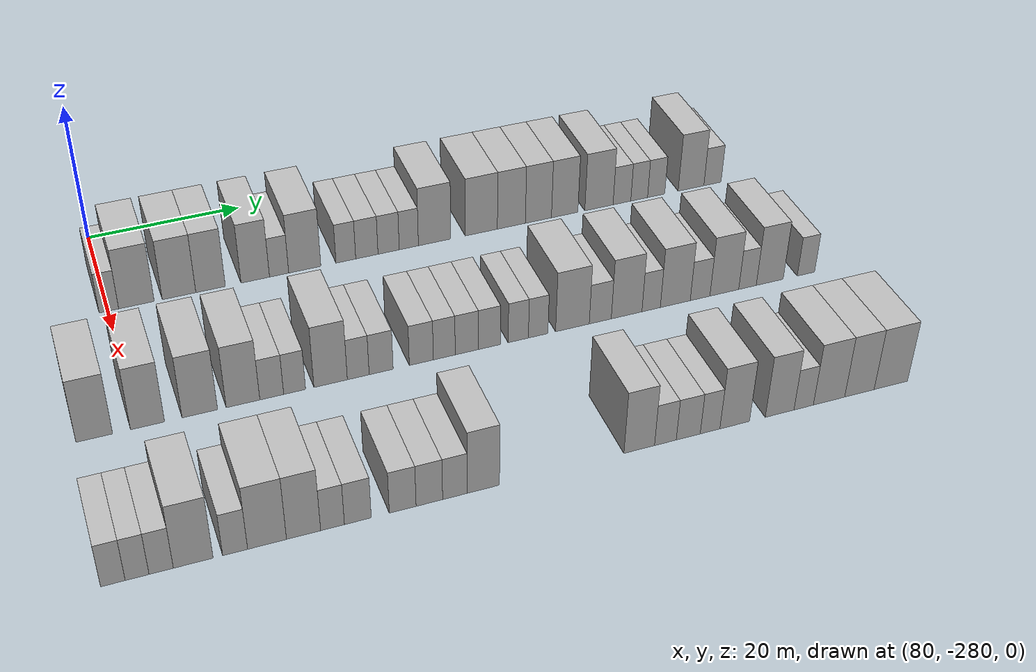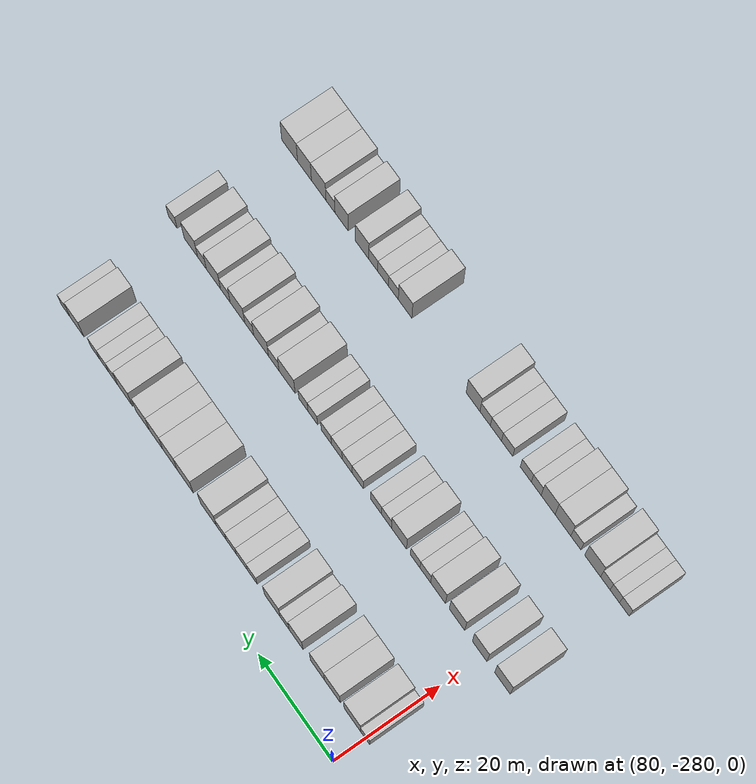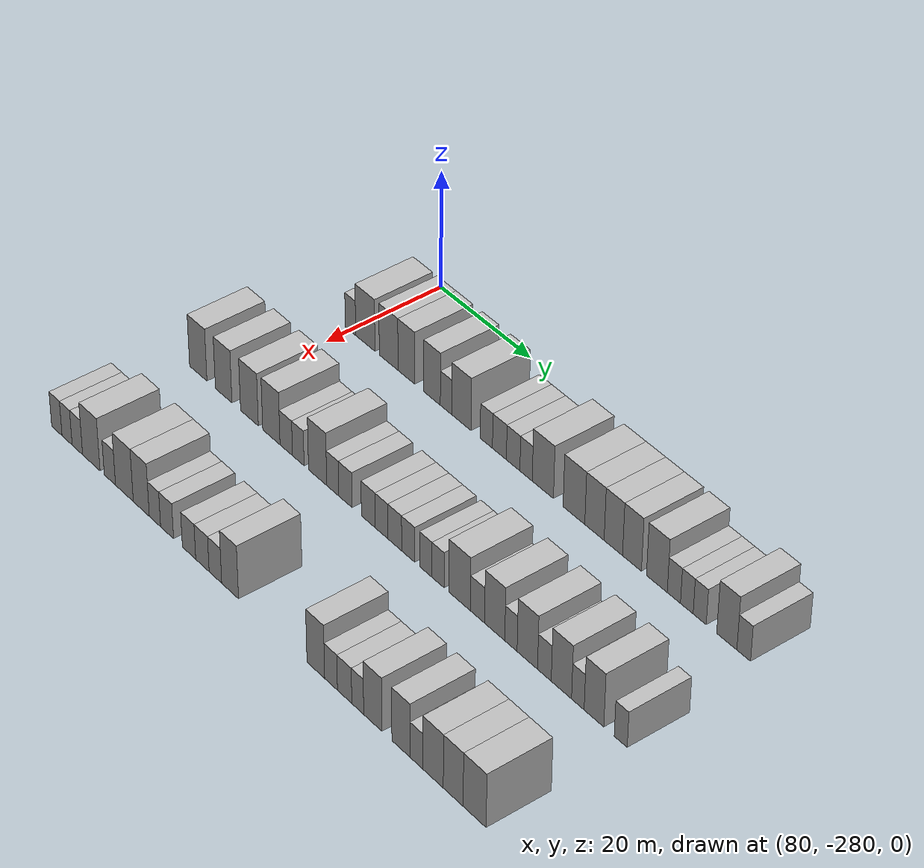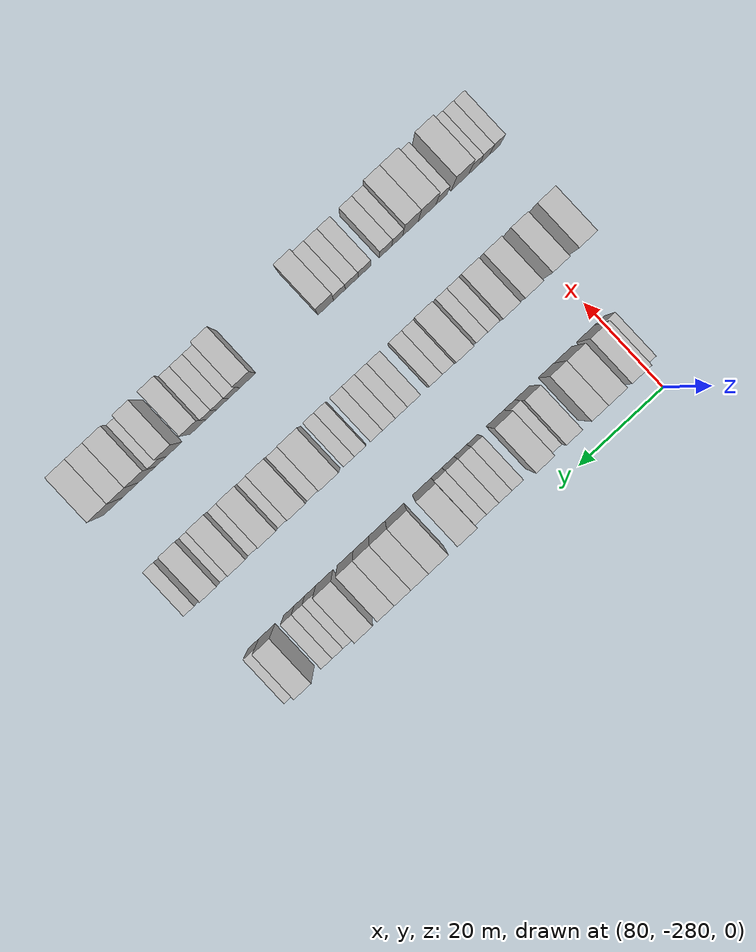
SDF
<sdf version="1.6">
 <world name="default">
  <model name="building_583">
   <static>1</static>
   <pose>91.0000 -279.8989 0 0.000000 0.000000 0.000000</pose>
   <link name="link">
    <pose>0 0 3.00 0 0 0</pose>
    <collision name="collision"><geometry><box><size>10.0000 2.4034 6.0000</size></box></geometry></collision>
    <visual name="visual">
     <cast_shadows>0</cast_shadows>
     <geometry><box><size>10.0000 2.4034 6.0000</size></box></geometry>
     <material>
      <script>
       <uri>model://HANNAS_wall/materials/scripts</uri>
       <uri>model://HANNAS_wall/materials/textures</uri>
       <name>vrc/HANNAS_wall</name>
      </script>
     </material>
    </visual>
   </link>
  </model>
  <model name="building_584">
   <static>1</static>
   <pose>91.0000 -276.4935 0 0.000000 0.000000 0.000000</pose>
   <link name="link">
    <pose>0 0 4.50 0 0 0</pose>
    <collision name="collision"><geometry><box><size>10.0000 4.4073 9.0000</size></box></geometry></collision>
    <visual name="visual">
     <cast_shadows>0</cast_shadows>
     <geometry><box><size>10.0000 4.4073 9.0000</size></box></geometry>
     <material>
      <script>
       <uri>model://HANNAS_wall/materials/scripts</uri>
       <uri>model://HANNAS_wall/materials/textures</uri>
       <name>vrc/HANNAS_wall</name>
      </script>
     </material>
    </visual>
   </link>
  </model>
  <model name="building_585">
   <static>1</static>
   <pose>91.0000 -271.1800 0 0.000000 0.000000 0.000000</pose>
   <link name="link">
    <pose>0 0 4.50 0 0 0</pose>
    <collision name="collision"><geometry><box><size>10.0000 4.2196 9.0000</size></box></geometry></collision>
    <visual name="visual">
     <cast_shadows>0</cast_shadows>
     <geometry><box><size>10.0000 4.2196 9.0000</size></box></geometry>
     <material>
      <script>
       <uri>model://HANNAS_wall/materials/scripts</uri>
       <uri>model://HANNAS_wall/materials/textures</uri>
       <name>vrc/HANNAS_wall</name>
      </script>
     </material>
    </visual>
   </link>
  </model>
  <model name="building_586">
   <static>1</static>
   <pose>91.0000 -267.1969 0 0.000000 0.000000 0.000000</pose>
   <link name="link">
    <pose>0 0 4.50 0 0 0</pose>
    <collision name="collision"><geometry><box><size>10.0000 3.7467 9.0000</size></box></geometry></collision>
    <visual name="visual">
     <cast_shadows>0</cast_shadows>
     <geometry><box><size>10.0000 3.7467 9.0000</size></box></geometry>
     <material>
      <script>
       <uri>model://HANNAS_wall/materials/scripts</uri>
       <uri>model://HANNAS_wall/materials/textures</uri>
       <name>vrc/HANNAS_wall</name>
      </script>
     </material>
    </visual>
   </link>
  </model>
  <model name="building_587">
   <static>1</static>
   <pose>91.0000 -261.4858 0 0.000000 0.000000 0.000000</pose>
   <link name="link">
    <pose>0 0 4.50 0 0 0</pose>
    <collision name="collision"><geometry><box><size>10.0000 3.6754 9.0000</size></box></geometry></collision>
    <visual name="visual">
     <cast_shadows>0</cast_shadows>
     <geometry><box><size>10.0000 3.6754 9.0000</size></box></geometry>
     <material>
      <script>
       <uri>model://HANNAS_wall/materials/scripts</uri>
       <uri>model://HANNAS_wall/materials/textures</uri>
       <name>vrc/HANNAS_wall</name>
      </script>
     </material>
    </visual>
   </link>
  </model>
  <model name="building_588">
   <static>1</static>
   <pose>91.0000 -258.4003 0 0.000000 0.000000 0.000000</pose>
   <link name="link">
    <pose>0 0 3.00 0 0 0</pose>
    <collision name="collision"><geometry><box><size>10.0000 2.4956 6.0000</size></box></geometry></collision>
    <visual name="visual">
     <cast_shadows>0</cast_shadows>
     <geometry><box><size>10.0000 2.4956 6.0000</size></box></geometry>
     <material>
      <script>
       <uri>model://HANNAS_wall/materials/scripts</uri>
       <uri>model://HANNAS_wall/materials/textures</uri>
       <name>vrc/HANNAS_wall</name>
      </script>
     </material>
    </visual>
   </link>
  </model>
  <model name="building_589">
   <static>1</static>
   <pose>91.0000 -255.0483 0 0.000000 0.000000 0.000000</pose>
   <link name="link">
    <pose>0 0 4.50 0 0 0</pose>
    <collision name="collision"><geometry><box><size>10.0000 4.2083 9.0000</size></box></geometry></collision>
    <visual name="visual">
     <cast_shadows>0</cast_shadows>
     <geometry><box><size>10.0000 4.2083 9.0000</size></box></geometry>
     <material>
      <script>
       <uri>model://HANNAS_wall/materials/scripts</uri>
       <uri>model://HANNAS_wall/materials/textures</uri>
       <name>vrc/HANNAS_wall</name>
      </script>
     </material>
    </visual>
   </link>
  </model>
  <model name="building_590">
   <static>1</static>
   <pose>91.0000 -249.6351 0 0.000000 0.000000 0.000000</pose>
   <link name="link">
    <pose>0 0 3.00 0 0 0</pose>
    <collision name="collision"><geometry><box><size>10.0000 2.6181 6.0000</size></box></geometry></collision>
    <visual name="visual">
     <cast_shadows>0</cast_shadows>
     <geometry><box><size>10.0000 2.6181 6.0000</size></box></geometry>
     <material>
      <script>
       <uri>model://HANNAS_wall/materials/scripts</uri>
       <uri>model://HANNAS_wall/materials/textures</uri>
       <name>vrc/HANNAS_wall</name>
      </script>
     </material>
    </visual>
   </link>
  </model>
  <model name="building_591">
   <static>1</static>
   <pose>91.0000 -246.8352 0 0.000000 0.000000 0.000000</pose>
   <link name="link">
    <pose>0 0 3.00 0 0 0</pose>
    <collision name="collision"><geometry><box><size>10.0000 2.9816 6.0000</size></box></geometry></collision>
    <visual name="visual">
     <cast_shadows>0</cast_shadows>
     <geometry><box><size>10.0000 2.9816 6.0000</size></box></geometry>
     <material>
      <script>
       <uri>model://HANNAS_wall/materials/scripts</uri>
       <uri>model://HANNAS_wall/materials/textures</uri>
       <name>vrc/HANNAS_wall</name>
      </script>
     </material>
    </visual>
   </link>
  </model>
  <model name="building_592">
   <static>1</static>
   <pose>91.0000 -243.9129 0 0.000000 0.000000 0.000000</pose>
   <link name="link">
    <pose>0 0 3.00 0 0 0</pose>
    <collision name="collision"><geometry><box><size>10.0000 2.8630 6.0000</size></box></geometry></collision>
    <visual name="visual">
     <cast_shadows>0</cast_shadows>
     <geometry><box><size>10.0000 2.8630 6.0000</size></box></geometry>
     <material>
      <script>
       <uri>model://HANNAS_wall/materials/scripts</uri>
       <uri>model://HANNAS_wall/materials/textures</uri>
       <name>vrc/HANNAS_wall</name>
      </script>
     </material>
    </visual>
   </link>
  </model>
  <model name="building_593">
   <static>1</static>
   <pose>91.0000 -241.1825 0 0.000000 0.000000 0.000000</pose>
   <link name="link">
    <pose>0 0 3.00 0 0 0</pose>
    <collision name="collision"><geometry><box><size>10.0000 2.5979 6.0000</size></box></geometry></collision>
    <visual name="visual">
     <cast_shadows>0</cast_shadows>
     <geometry><box><size>10.0000 2.5979 6.0000</size></box></geometry>
     <material>
      <script>
       <uri>model://HANNAS_wall/materials/scripts</uri>
       <uri>model://HANNAS_wall/materials/textures</uri>
       <name>vrc/HANNAS_wall</name>
      </script>
     </material>
    </visual>
   </link>
  </model>
  <model name="building_594">
   <static>1</static>
   <pose>91.0000 -237.6687 0 0.000000 0.000000 0.000000</pose>
   <link name="link">
    <pose>0 0 4.50 0 0 0</pose>
    <collision name="collision"><geometry><box><size>10.0000 4.4295 9.0000</size></box></geometry></collision>
    <visual name="visual">
     <cast_shadows>0</cast_shadows>
     <geometry><box><size>10.0000 4.4295 9.0000</size></box></geometry>
     <material>
      <script>
       <uri>model://HANNAS_wall/materials/scripts</uri>
       <uri>model://HANNAS_wall/materials/textures</uri>
       <name>vrc/HANNAS_wall</name>
      </script>
     </material>
    </visual>
   </link>
  </model>
  <model name="building_595">
   <static>1</static>
   <pose>91.0000 -231.2241 0 0.000000 0.000000 0.000000</pose>
   <link name="link">
    <pose>0 0 4.50 0 0 0</pose>
    <collision name="collision"><geometry><box><size>10.0000 4.4598 9.0000</size></box></geometry></collision>
    <visual name="visual">
     <cast_shadows>0</cast_shadows>
     <geometry><box><size>10.0000 4.4598 9.0000</size></box></geometry>
     <material>
      <script>
       <uri>model://HANNAS_wall/materials/scripts</uri>
       <uri>model://HANNAS_wall/materials/textures</uri>
       <name>vrc/HANNAS_wall</name>
      </script>
     </material>
    </visual>
   </link>
  </model>
  <model name="building_596">
   <static>1</static>
   <pose>91.0000 -227.0301 0 0.000000 0.000000 0.000000</pose>
   <link name="link">
    <pose>0 0 4.50 0 0 0</pose>
    <collision name="collision"><geometry><box><size>10.0000 3.9282 9.0000</size></box></geometry></collision>
    <visual name="visual">
     <cast_shadows>0</cast_shadows>
     <geometry><box><size>10.0000 3.9282 9.0000</size></box></geometry>
     <material>
      <script>
       <uri>model://HANNAS_wall/materials/scripts</uri>
       <uri>model://HANNAS_wall/materials/textures</uri>
       <name>vrc/HANNAS_wall</name>
      </script>
     </material>
    </visual>
   </link>
  </model>
  <model name="building_597">
   <static>1</static>
   <pose>91.0000 -223.2110 0 0.000000 0.000000 0.000000</pose>
   <link name="link">
    <pose>0 0 4.50 0 0 0</pose>
    <collision name="collision"><geometry><box><size>10.0000 3.7100 9.0000</size></box></geometry></collision>
    <visual name="visual">
     <cast_shadows>0</cast_shadows>
     <geometry><box><size>10.0000 3.7100 9.0000</size></box></geometry>
     <material>
      <script>
       <uri>model://HANNAS_wall/materials/scripts</uri>
       <uri>model://HANNAS_wall/materials/textures</uri>
       <name>vrc/HANNAS_wall</name>
      </script>
     </material>
    </visual>
   </link>
  </model>
  <model name="building_598">
   <static>1</static>
   <pose>91.0000 -219.4651 0 0.000000 0.000000 0.000000</pose>
   <link name="link">
    <pose>0 0 4.50 0 0 0</pose>
    <collision name="collision"><geometry><box><size>10.0000 3.7818 9.0000</size></box></geometry></collision>
    <visual name="visual">
     <cast_shadows>0</cast_shadows>
     <geometry><box><size>10.0000 3.7818 9.0000</size></box></geometry>
     <material>
      <script>
       <uri>model://HANNAS_wall/materials/scripts</uri>
       <uri>model://HANNAS_wall/materials/textures</uri>
       <name>vrc/HANNAS_wall</name>
      </script>
     </material>
    </visual>
   </link>
  </model>
  <model name="building_599">
   <static>1</static>
   <pose>91.0000 -214.5236 0 0.000000 0.000000 0.000000</pose>
   <link name="link">
    <pose>0 0 4.50 0 0 0</pose>
    <collision name="collision"><geometry><box><size>10.0000 4.1012 9.0000</size></box></geometry></collision>
    <visual name="visual">
     <cast_shadows>0</cast_shadows>
     <geometry><box><size>10.0000 4.1012 9.0000</size></box></geometry>
     <material>
      <script>
       <uri>model://HANNAS_wall/materials/scripts</uri>
       <uri>model://HANNAS_wall/materials/textures</uri>
       <name>vrc/HANNAS_wall</name>
      </script>
     </material>
    </visual>
   </link>
  </model>
  <model name="building_600">
   <static>1</static>
   <pose>91.0000 -211.1805 0 0.000000 0.000000 0.000000</pose>
   <link name="link">
    <pose>0 0 3.00 0 0 0</pose>
    <collision name="collision"><geometry><box><size>10.0000 2.5851 6.0000</size></box></geometry></collision>
    <visual name="visual">
     <cast_shadows>0</cast_shadows>
     <geometry><box><size>10.0000 2.5851 6.0000</size></box></geometry>
     <material>
      <script>
       <uri>model://HANNAS_wall/materials/scripts</uri>
       <uri>model://HANNAS_wall/materials/textures</uri>
       <name>vrc/HANNAS_wall</name>
      </script>
     </material>
    </visual>
   </link>
  </model>
  <model name="building_601">
   <static>1</static>
   <pose>91.0000 -208.6540 0 0.000000 0.000000 0.000000</pose>
   <link name="link">
    <pose>0 0 3.00 0 0 0</pose>
    <collision name="collision"><geometry><box><size>10.0000 2.4679 6.0000</size></box></geometry></collision>
    <visual name="visual">
     <cast_shadows>0</cast_shadows>
     <geometry><box><size>10.0000 2.4679 6.0000</size></box></geometry>
     <material>
      <script>
       <uri>model://HANNAS_wall/materials/scripts</uri>
       <uri>model://HANNAS_wall/materials/textures</uri>
       <name>vrc/HANNAS_wall</name>
      </script>
     </material>
    </visual>
   </link>
  </model>
  <model name="building_602">
   <static>1</static>
   <pose>91.0000 -206.1531 0 0.000000 0.000000 0.000000</pose>
   <link name="link">
    <pose>0 0 3.00 0 0 0</pose>
    <collision name="collision"><geometry><box><size>10.0000 2.5339 6.0000</size></box></geometry></collision>
    <visual name="visual">
     <cast_shadows>0</cast_shadows>
     <geometry><box><size>10.0000 2.5339 6.0000</size></box></geometry>
     <material>
      <script>
       <uri>model://HANNAS_wall/materials/scripts</uri>
       <uri>model://HANNAS_wall/materials/textures</uri>
       <name>vrc/HANNAS_wall</name>
      </script>
     </material>
    </visual>
   </link>
  </model>
  <model name="building_603">
   <static>1</static>
   <pose>91.0000 -200.9616 0 0.000000 0.000000 0.000000</pose>
   <link name="link">
    <pose>0 0 4.50 0 0 0</pose>
    <collision name="collision"><geometry><box><size>10.0000 3.8490 9.0000</size></box></geometry></collision>
    <visual name="visual">
     <cast_shadows>0</cast_shadows>
     <geometry><box><size>10.0000 3.8490 9.0000</size></box></geometry>
     <material>
      <script>
       <uri>model://HANNAS_wall/materials/scripts</uri>
       <uri>model://HANNAS_wall/materials/textures</uri>
       <name>vrc/HANNAS_wall</name>
      </script>
     </material>
    </visual>
   </link>
  </model>
  <model name="building_604">
   <static>1</static>
   <pose>91.0000 -197.7402 0 0.000000 0.000000 0.000000</pose>
   <link name="link">
    <pose>0 0 3.00 0 0 0</pose>
    <collision name="collision"><geometry><box><size>10.0000 2.5940 6.0000</size></box></geometry></collision>
    <visual name="visual">
     <cast_shadows>0</cast_shadows>
     <geometry><box><size>10.0000 2.5940 6.0000</size></box></geometry>
     <material>
      <script>
       <uri>model://HANNAS_wall/materials/scripts</uri>
       <uri>model://HANNAS_wall/materials/textures</uri>
       <name>vrc/HANNAS_wall</name>
      </script>
     </material>
    </visual>
   </link>
  </model>
  <model name="building_765">
   <static>1</static>
   <pose>113.0000 -285.1212 0 0.000000 0.000000 0.000000</pose>
   <link name="link">
    <pose>0 0 4.50 0 0 0</pose>
    <collision name="collision"><geometry><box><size>10.0000 4.1030 9.0000</size></box></geometry></collision>
    <visual name="visual">
     <cast_shadows>0</cast_shadows>
     <geometry><box><size>10.0000 4.1030 9.0000</size></box></geometry>
     <material>
      <script>
       <uri>model://HANNAS_wall/materials/scripts</uri>
       <uri>model://HANNAS_wall/materials/textures</uri>
       <name>vrc/HANNAS_wall</name>
      </script>
     </material>
    </visual>
   </link>
  </model>
  <model name="building_766">
   <static>1</static>
   <pose>113.0000 -279.1335 0 0.000000 0.000000 0.000000</pose>
   <link name="link">
    <pose>0 0 4.50 0 0 0</pose>
    <collision name="collision"><geometry><box><size>10.0000 3.8724 9.0000</size></box></geometry></collision>
    <visual name="visual">
     <cast_shadows>0</cast_shadows>
     <geometry><box><size>10.0000 3.8724 9.0000</size></box></geometry>
     <material>
      <script>
       <uri>model://HANNAS_wall/materials/scripts</uri>
       <uri>model://HANNAS_wall/materials/textures</uri>
       <name>vrc/HANNAS_wall</name>
      </script>
     </material>
    </visual>
   </link>
  </model>
  <model name="building_767">
   <static>1</static>
   <pose>113.0000 -273.1442 0 0.000000 0.000000 0.000000</pose>
   <link name="link">
    <pose>0 0 4.50 0 0 0</pose>
    <collision name="collision"><geometry><box><size>10.0000 4.1061 9.0000</size></box></geometry></collision>
    <visual name="visual">
     <cast_shadows>0</cast_shadows>
     <geometry><box><size>10.0000 4.1061 9.0000</size></box></geometry>
     <material>
      <script>
       <uri>model://HANNAS_wall/materials/scripts</uri>
       <uri>model://HANNAS_wall/materials/textures</uri>
       <name>vrc/HANNAS_wall</name>
      </script>
     </material>
    </visual>
   </link>
  </model>
  <model name="building_768">
   <static>1</static>
   <pose>113.0000 -268.1210 0 0.000000 0.000000 0.000000</pose>
   <link name="link">
    <pose>0 0 4.50 0 0 0</pose>
    <collision name="collision"><geometry><box><size>10.0000 3.9403 9.0000</size></box></geometry></collision>
    <visual name="visual">
     <cast_shadows>0</cast_shadows>
     <geometry><box><size>10.0000 3.9403 9.0000</size></box></geometry>
     <material>
      <script>
       <uri>model://HANNAS_wall/materials/scripts</uri>
       <uri>model://HANNAS_wall/materials/textures</uri>
       <name>vrc/HANNAS_wall</name>
      </script>
     </material>
    </visual>
   </link>
  </model>
  <model name="building_769">
   <static>1</static>
   <pose>113.0000 -264.7407 0 0.000000 0.000000 0.000000</pose>
   <link name="link">
    <pose>0 0 3.00 0 0 0</pose>
    <collision name="collision"><geometry><box><size>10.0000 2.8204 6.0000</size></box></geometry></collision>
    <visual name="visual">
     <cast_shadows>0</cast_shadows>
     <geometry><box><size>10.0000 2.8204 6.0000</size></box></geometry>
     <material>
      <script>
       <uri>model://HANNAS_wall/materials/scripts</uri>
       <uri>model://HANNAS_wall/materials/textures</uri>
       <name>vrc/HANNAS_wall</name>
      </script>
     </material>
    </visual>
   </link>
  </model>
  <model name="building_770">
   <static>1</static>
   <pose>113.0000 -262.0262 0 0.000000 0.000000 0.000000</pose>
   <link name="link">
    <pose>0 0 3.00 0 0 0</pose>
    <collision name="collision"><geometry><box><size>10.0000 2.6085 6.0000</size></box></geometry></collision>
    <visual name="visual">
     <cast_shadows>0</cast_shadows>
     <geometry><box><size>10.0000 2.6085 6.0000</size></box></geometry>
     <material>
      <script>
       <uri>model://HANNAS_wall/materials/scripts</uri>
       <uri>model://HANNAS_wall/materials/textures</uri>
       <name>vrc/HANNAS_wall</name>
      </script>
     </material>
    </visual>
   </link>
  </model>
  <model name="building_771">
   <static>1</static>
   <pose>113.0000 -257.7062 0 0.000000 0.000000 0.000000</pose>
   <link name="link">
    <pose>0 0 4.50 0 0 0</pose>
    <collision name="collision"><geometry><box><size>10.0000 4.0316 9.0000</size></box></geometry></collision>
    <visual name="visual">
     <cast_shadows>0</cast_shadows>
     <geometry><box><size>10.0000 4.0316 9.0000</size></box></geometry>
     <material>
      <script>
       <uri>model://HANNAS_wall/materials/scripts</uri>
       <uri>model://HANNAS_wall/materials/textures</uri>
       <name>vrc/HANNAS_wall</name>
      </script>
     </material>
    </visual>
   </link>
  </model>
  <model name="building_772">
   <static>1</static>
   <pose>113.0000 -254.3630 0 0.000000 0.000000 0.000000</pose>
   <link name="link">
    <pose>0 0 3.00 0 0 0</pose>
    <collision name="collision"><geometry><box><size>10.0000 2.6547 6.0000</size></box></geometry></collision>
    <visual name="visual">
     <cast_shadows>0</cast_shadows>
     <geometry><box><size>10.0000 2.6547 6.0000</size></box></geometry>
     <material>
      <script>
       <uri>model://HANNAS_wall/materials/scripts</uri>
       <uri>model://HANNAS_wall/materials/textures</uri>
       <name>vrc/HANNAS_wall</name>
      </script>
     </material>
    </visual>
   </link>
  </model>
  <model name="building_773">
   <static>1</static>
   <pose>113.0000 -251.5645 0 0.000000 0.000000 0.000000</pose>
   <link name="link">
    <pose>0 0 3.00 0 0 0</pose>
    <collision name="collision"><geometry><box><size>10.0000 2.9424 6.0000</size></box></geometry></collision>
    <visual name="visual">
     <cast_shadows>0</cast_shadows>
     <geometry><box><size>10.0000 2.9424 6.0000</size></box></geometry>
     <material>
      <script>
       <uri>model://HANNAS_wall/materials/scripts</uri>
       <uri>model://HANNAS_wall/materials/textures</uri>
       <name>vrc/HANNAS_wall</name>
      </script>
     </material>
    </visual>
   </link>
  </model>
  <model name="building_774">
   <static>1</static>
   <pose>113.0000 -246.6026 0 0.000000 0.000000 0.000000</pose>
   <link name="link">
    <pose>0 0 3.00 0 0 0</pose>
    <collision name="collision"><geometry><box><size>10.0000 2.9816 6.0000</size></box></geometry></collision>
    <visual name="visual">
     <cast_shadows>0</cast_shadows>
     <geometry><box><size>10.0000 2.9816 6.0000</size></box></geometry>
     <material>
      <script>
       <uri>model://HANNAS_wall/materials/scripts</uri>
       <uri>model://HANNAS_wall/materials/textures</uri>
       <name>vrc/HANNAS_wall</name>
      </script>
     </material>
    </visual>
   </link>
  </model>
  <model name="building_775">
   <static>1</static>
   <pose>113.0000 -243.7395 0 0.000000 0.000000 0.000000</pose>
   <link name="link">
    <pose>0 0 3.00 0 0 0</pose>
    <collision name="collision"><geometry><box><size>10.0000 2.7446 6.0000</size></box></geometry></collision>
    <visual name="visual">
     <cast_shadows>0</cast_shadows>
     <geometry><box><size>10.0000 2.7446 6.0000</size></box></geometry>
     <material>
      <script>
       <uri>model://HANNAS_wall/materials/scripts</uri>
       <uri>model://HANNAS_wall/materials/textures</uri>
       <name>vrc/HANNAS_wall</name>
      </script>
     </material>
    </visual>
   </link>
  </model>
  <model name="building_776">
   <static>1</static>
   <pose>113.0000 -240.9069 0 0.000000 0.000000 0.000000</pose>
   <link name="link">
    <pose>0 0 3.00 0 0 0</pose>
    <collision name="collision"><geometry><box><size>10.0000 2.9207 6.0000</size></box></geometry></collision>
    <visual name="visual">
     <cast_shadows>0</cast_shadows>
     <geometry><box><size>10.0000 2.9207 6.0000</size></box></geometry>
     <material>
      <script>
       <uri>model://HANNAS_wall/materials/scripts</uri>
       <uri>model://HANNAS_wall/materials/textures</uri>
       <name>vrc/HANNAS_wall</name>
      </script>
     </material>
    </visual>
   </link>
  </model>
  <model name="building_777">
   <static>1</static>
   <pose>113.0000 -238.0486 0 0.000000 0.000000 0.000000</pose>
   <link name="link">
    <pose>0 0 3.00 0 0 0</pose>
    <collision name="collision"><geometry><box><size>10.0000 2.7958 6.0000</size></box></geometry></collision>
    <visual name="visual">
     <cast_shadows>0</cast_shadows>
     <geometry><box><size>10.0000 2.7958 6.0000</size></box></geometry>
     <material>
      <script>
       <uri>model://HANNAS_wall/materials/scripts</uri>
       <uri>model://HANNAS_wall/materials/textures</uri>
       <name>vrc/HANNAS_wall</name>
      </script>
     </material>
    </visual>
   </link>
  </model>
  <model name="building_778">
   <static>1</static>
   <pose>113.0000 -234.3490 0 0.000000 0.000000 0.000000</pose>
   <link name="link">
    <pose>0 0 3.00 0 0 0</pose>
    <collision name="collision"><geometry><box><size>10.0000 2.6035 6.0000</size></box></geometry></collision>
    <visual name="visual">
     <cast_shadows>0</cast_shadows>
     <geometry><box><size>10.0000 2.6035 6.0000</size></box></geometry>
     <material>
      <script>
       <uri>model://HANNAS_wall/materials/scripts</uri>
       <uri>model://HANNAS_wall/materials/textures</uri>
       <name>vrc/HANNAS_wall</name>
      </script>
     </material>
    </visual>
   </link>
  </model>
  <model name="building_779">
   <static>1</static>
   <pose>113.0000 -231.7825 0 0.000000 0.000000 0.000000</pose>
   <link name="link">
    <pose>0 0 3.00 0 0 0</pose>
    <collision name="collision"><geometry><box><size>10.0000 2.5296 6.0000</size></box></geometry></collision>
    <visual name="visual">
     <cast_shadows>0</cast_shadows>
     <geometry><box><size>10.0000 2.5296 6.0000</size></box></geometry>
     <material>
      <script>
       <uri>model://HANNAS_wall/materials/scripts</uri>
       <uri>model://HANNAS_wall/materials/textures</uri>
       <name>vrc/HANNAS_wall</name>
      </script>
     </material>
    </visual>
   </link>
  </model>
  <model name="building_780">
   <static>1</static>
   <pose>113.0000 -227.3114 0 0.000000 0.000000 0.000000</pose>
   <link name="link">
    <pose>0 0 4.50 0 0 0</pose>
    <collision name="collision"><geometry><box><size>10.0000 4.4125 9.0000</size></box></geometry></collision>
    <visual name="visual">
     <cast_shadows>0</cast_shadows>
     <geometry><box><size>10.0000 4.4125 9.0000</size></box></geometry>
     <material>
      <script>
       <uri>model://HANNAS_wall/materials/scripts</uri>
       <uri>model://HANNAS_wall/materials/textures</uri>
       <name>vrc/HANNAS_wall</name>
      </script>
     </material>
    </visual>
   </link>
  </model>
  <model name="building_781">
   <static>1</static>
   <pose>113.0000 -223.6478 0 0.000000 0.000000 0.000000</pose>
   <link name="link">
    <pose>0 0 3.00 0 0 0</pose>
    <collision name="collision"><geometry><box><size>10.0000 2.9148 6.0000</size></box></geometry></collision>
    <visual name="visual">
     <cast_shadows>0</cast_shadows>
     <geometry><box><size>10.0000 2.9148 6.0000</size></box></geometry>
     <material>
      <script>
       <uri>model://HANNAS_wall/materials/scripts</uri>
       <uri>model://HANNAS_wall/materials/textures</uri>
       <name>vrc/HANNAS_wall</name>
      </script>
     </material>
    </visual>
   </link>
  </model>
  <model name="building_782">
   <static>1</static>
   <pose>113.0000 -220.1425 0 0.000000 0.000000 0.000000</pose>
   <link name="link">
    <pose>0 0 4.50 0 0 0</pose>
    <collision name="collision"><geometry><box><size>10.0000 4.0959 9.0000</size></box></geometry></collision>
    <visual name="visual">
     <cast_shadows>0</cast_shadows>
     <geometry><box><size>10.0000 4.0959 9.0000</size></box></geometry>
     <material>
      <script>
       <uri>model://HANNAS_wall/materials/scripts</uri>
       <uri>model://HANNAS_wall/materials/textures</uri>
       <name>vrc/HANNAS_wall</name>
      </script>
     </material>
    </visual>
   </link>
  </model>
  <model name="building_783">
   <static>1</static>
   <pose>113.0000 -216.8578 0 0.000000 0.000000 0.000000</pose>
   <link name="link">
    <pose>0 0 3.00 0 0 0</pose>
    <collision name="collision"><geometry><box><size>10.0000 2.4735 6.0000</size></box></geometry></collision>
    <visual name="visual">
     <cast_shadows>0</cast_shadows>
     <geometry><box><size>10.0000 2.4735 6.0000</size></box></geometry>
     <material>
      <script>
       <uri>model://HANNAS_wall/materials/scripts</uri>
       <uri>model://HANNAS_wall/materials/textures</uri>
       <name>vrc/HANNAS_wall</name>
      </script>
     </material>
    </visual>
   </link>
  </model>
  <model name="building_784">
   <static>1</static>
   <pose>113.0000 -213.5853 0 0.000000 0.000000 0.000000</pose>
   <link name="link">
    <pose>0 0 4.50 0 0 0</pose>
    <collision name="collision"><geometry><box><size>10.0000 4.0714 9.0000</size></box></geometry></collision>
    <visual name="visual">
     <cast_shadows>0</cast_shadows>
     <geometry><box><size>10.0000 4.0714 9.0000</size></box></geometry>
     <material>
      <script>
       <uri>model://HANNAS_wall/materials/scripts</uri>
       <uri>model://HANNAS_wall/materials/textures</uri>
       <name>vrc/HANNAS_wall</name>
      </script>
     </material>
    </visual>
   </link>
  </model>
  <model name="building_785">
   <static>1</static>
   <pose>113.0000 -210.1982 0 0.000000 0.000000 0.000000</pose>
   <link name="link">
    <pose>0 0 3.00 0 0 0</pose>
    <collision name="collision"><geometry><box><size>10.0000 2.7028 6.0000</size></box></geometry></collision>
    <visual name="visual">
     <cast_shadows>0</cast_shadows>
     <geometry><box><size>10.0000 2.7028 6.0000</size></box></geometry>
     <material>
      <script>
       <uri>model://HANNAS_wall/materials/scripts</uri>
       <uri>model://HANNAS_wall/materials/textures</uri>
       <name>vrc/HANNAS_wall</name>
      </script>
     </material>
    </visual>
   </link>
  </model>
  <model name="building_786">
   <static>1</static>
   <pose>113.0000 -206.8570 0 0.000000 0.000000 0.000000</pose>
   <link name="link">
    <pose>0 0 4.50 0 0 0</pose>
    <collision name="collision"><geometry><box><size>10.0000 3.9797 9.0000</size></box></geometry></collision>
    <visual name="visual">
     <cast_shadows>0</cast_shadows>
     <geometry><box><size>10.0000 3.9797 9.0000</size></box></geometry>
     <material>
      <script>
       <uri>model://HANNAS_wall/materials/scripts</uri>
       <uri>model://HANNAS_wall/materials/textures</uri>
       <name>vrc/HANNAS_wall</name>
      </script>
     </material>
    </visual>
   </link>
  </model>
  <model name="building_787">
   <static>1</static>
   <pose>113.0000 -203.6434 0 0.000000 0.000000 0.000000</pose>
   <link name="link">
    <pose>0 0 3.00 0 0 0</pose>
    <collision name="collision"><geometry><box><size>10.0000 2.4476 6.0000</size></box></geometry></collision>
    <visual name="visual">
     <cast_shadows>0</cast_shadows>
     <geometry><box><size>10.0000 2.4476 6.0000</size></box></geometry>
     <material>
      <script>
       <uri>model://HANNAS_wall/materials/scripts</uri>
       <uri>model://HANNAS_wall/materials/textures</uri>
       <name>vrc/HANNAS_wall</name>
      </script>
     </material>
    </visual>
   </link>
  </model>
  <model name="building_788">
   <static>1</static>
   <pose>113.0000 -200.5249 0 0.000000 0.000000 0.000000</pose>
   <link name="link">
    <pose>0 0 4.50 0 0 0</pose>
    <collision name="collision"><geometry><box><size>10.0000 3.7893 9.0000</size></box></geometry></collision>
    <visual name="visual">
     <cast_shadows>0</cast_shadows>
     <geometry><box><size>10.0000 3.7893 9.0000</size></box></geometry>
     <material>
      <script>
       <uri>model://HANNAS_wall/materials/scripts</uri>
       <uri>model://HANNAS_wall/materials/textures</uri>
       <name>vrc/HANNAS_wall</name>
      </script>
     </material>
    </visual>
   </link>
  </model>
  <model name="building_789">
   <static>1</static>
   <pose>113.0000 -195.3949 0 0.000000 0.000000 0.000000</pose>
   <link name="link">
    <pose>0 0 3.00 0 0 0</pose>
    <collision name="collision"><geometry><box><size>10.0000 2.4707 6.0000</size></box></geometry></collision>
    <visual name="visual">
     <cast_shadows>0</cast_shadows>
     <geometry><box><size>10.0000 2.4707 6.0000</size></box></geometry>
     <material>
      <script>
       <uri>model://HANNAS_wall/materials/scripts</uri>
       <uri>model://HANNAS_wall/materials/textures</uri>
       <name>vrc/HANNAS_wall</name>
      </script>
     </material>
    </visual>
   </link>
  </model>
  <model name="building_956">
   <static>1</static>
   <pose>135.0000 -286.6862 0 0.000000 0.000000 0.000000</pose>
   <link name="link">
    <pose>0 0 3.00 0 0 0</pose>
    <collision name="collision"><geometry><box><size>10.0000 2.5023 6.0000</size></box></geometry></collision>
    <visual name="visual">
     <cast_shadows>0</cast_shadows>
     <geometry><box><size>10.0000 2.5023 6.0000</size></box></geometry>
     <material>
      <script>
       <uri>model://HANNAS_wall/materials/scripts</uri>
       <uri>model://HANNAS_wall/materials/textures</uri>
       <name>vrc/HANNAS_wall</name>
      </script>
     </material>
    </visual>
   </link>
  </model>
  <model name="building_957">
   <static>1</static>
   <pose>135.0000 -284.2163 0 0.000000 0.000000 0.000000</pose>
   <link name="link">
    <pose>0 0 3.00 0 0 0</pose>
    <collision name="collision"><geometry><box><size>10.0000 2.4375 6.0000</size></box></geometry></collision>
    <visual name="visual">
     <cast_shadows>0</cast_shadows>
     <geometry><box><size>10.0000 2.4375 6.0000</size></box></geometry>
     <material>
      <script>
       <uri>model://HANNAS_wall/materials/scripts</uri>
       <uri>model://HANNAS_wall/materials/textures</uri>
       <name>vrc/HANNAS_wall</name>
      </script>
     </material>
    </visual>
   </link>
  </model>
  <model name="building_958">
   <static>1</static>
   <pose>135.0000 -281.7423 0 0.000000 0.000000 0.000000</pose>
   <link name="link">
    <pose>0 0 3.00 0 0 0</pose>
    <collision name="collision"><geometry><box><size>10.0000 2.5106 6.0000</size></box></geometry></collision>
    <visual name="visual">
     <cast_shadows>0</cast_shadows>
     <geometry><box><size>10.0000 2.5106 6.0000</size></box></geometry>
     <material>
      <script>
       <uri>model://HANNAS_wall/materials/scripts</uri>
       <uri>model://HANNAS_wall/materials/textures</uri>
       <name>vrc/HANNAS_wall</name>
      </script>
     </material>
    </visual>
   </link>
  </model>
  <model name="building_959">
   <static>1</static>
   <pose>135.0000 -278.4130 0 0.000000 0.000000 0.000000</pose>
   <link name="link">
    <pose>0 0 4.50 0 0 0</pose>
    <collision name="collision"><geometry><box><size>10.0000 4.1481 9.0000</size></box></geometry></collision>
    <visual name="visual">
     <cast_shadows>0</cast_shadows>
     <geometry><box><size>10.0000 4.1481 9.0000</size></box></geometry>
     <material>
      <script>
       <uri>model://HANNAS_wall/materials/scripts</uri>
       <uri>model://HANNAS_wall/materials/textures</uri>
       <name>vrc/HANNAS_wall</name>
      </script>
     </material>
    </visual>
   </link>
  </model>
  <model name="building_960">
   <static>1</static>
   <pose>135.0000 -274.0202 0 0.000000 0.000000 0.000000</pose>
   <link name="link">
    <pose>0 0 3.00 0 0 0</pose>
    <collision name="collision"><geometry><box><size>10.0000 2.6375 6.0000</size></box></geometry></collision>
    <visual name="visual">
     <cast_shadows>0</cast_shadows>
     <geometry><box><size>10.0000 2.6375 6.0000</size></box></geometry>
     <material>
      <script>
       <uri>model://HANNAS_wall/materials/scripts</uri>
       <uri>model://HANNAS_wall/materials/textures</uri>
       <name>vrc/HANNAS_wall</name>
      </script>
     </material>
    </visual>
   </link>
  </model>
  <model name="building_961">
   <static>1</static>
   <pose>135.0000 -270.6253 0 0.000000 0.000000 0.000000</pose>
   <link name="link">
    <pose>0 0 4.50 0 0 0</pose>
    <collision name="collision"><geometry><box><size>10.0000 4.1524 9.0000</size></box></geometry></collision>
    <visual name="visual">
     <cast_shadows>0</cast_shadows>
     <geometry><box><size>10.0000 4.1524 9.0000</size></box></geometry>
     <material>
      <script>
       <uri>model://HANNAS_wall/materials/scripts</uri>
       <uri>model://HANNAS_wall/materials/textures</uri>
       <name>vrc/HANNAS_wall</name>
      </script>
     </material>
    </visual>
   </link>
  </model>
  <model name="building_962">
   <static>1</static>
   <pose>135.0000 -266.7012 0 0.000000 0.000000 0.000000</pose>
   <link name="link">
    <pose>0 0 4.50 0 0 0</pose>
    <collision name="collision"><geometry><box><size>10.0000 3.6958 9.0000</size></box></geometry></collision>
    <visual name="visual">
     <cast_shadows>0</cast_shadows>
     <geometry><box><size>10.0000 3.6958 9.0000</size></box></geometry>
     <material>
      <script>
       <uri>model://HANNAS_wall/materials/scripts</uri>
       <uri>model://HANNAS_wall/materials/textures</uri>
       <name>vrc/HANNAS_wall</name>
      </script>
     </material>
    </visual>
   </link>
  </model>
  <model name="building_963">
   <static>1</static>
   <pose>135.0000 -263.5567 0 0.000000 0.000000 0.000000</pose>
   <link name="link">
    <pose>0 0 3.00 0 0 0</pose>
    <collision name="collision"><geometry><box><size>10.0000 2.5933 6.0000</size></box></geometry></collision>
    <visual name="visual">
     <cast_shadows>0</cast_shadows>
     <geometry><box><size>10.0000 2.5933 6.0000</size></box></geometry>
     <material>
      <script>
       <uri>model://HANNAS_wall/materials/scripts</uri>
       <uri>model://HANNAS_wall/materials/textures</uri>
       <name>vrc/HANNAS_wall</name>
      </script>
     </material>
    </visual>
   </link>
  </model>
  <model name="building_964">
   <static>1</static>
   <pose>135.0000 -260.7832 0 0.000000 0.000000 0.000000</pose>
   <link name="link">
    <pose>0 0 3.00 0 0 0</pose>
    <collision name="collision"><geometry><box><size>10.0000 2.9537 6.0000</size></box></geometry></collision>
    <visual name="visual">
     <cast_shadows>0</cast_shadows>
     <geometry><box><size>10.0000 2.9537 6.0000</size></box></geometry>
     <material>
      <script>
       <uri>model://HANNAS_wall/materials/scripts</uri>
       <uri>model://HANNAS_wall/materials/textures</uri>
       <name>vrc/HANNAS_wall</name>
      </script>
     </material>
    </visual>
   </link>
  </model>
  <model name="building_965">
   <static>1</static>
   <pose>135.0000 -255.8090 0 0.000000 0.000000 0.000000</pose>
   <link name="link">
    <pose>0 0 3.00 0 0 0</pose>
    <collision name="collision"><geometry><box><size>10.0000 2.9948 6.0000</size></box></geometry></collision>
    <visual name="visual">
     <cast_shadows>0</cast_shadows>
     <geometry><box><size>10.0000 2.9948 6.0000</size></box></geometry>
     <material>
      <script>
       <uri>model://HANNAS_wall/materials/scripts</uri>
       <uri>model://HANNAS_wall/materials/textures</uri>
       <name>vrc/HANNAS_wall</name>
      </script>
     </material>
    </visual>
   </link>
  </model>
  <model name="building_966">
   <static>1</static>
   <pose>135.0000 -252.8149 0 0.000000 0.000000 0.000000</pose>
   <link name="link">
    <pose>0 0 3.00 0 0 0</pose>
    <collision name="collision"><geometry><box><size>10.0000 2.9933 6.0000</size></box></geometry></collision>
    <visual name="visual">
     <cast_shadows>0</cast_shadows>
     <geometry><box><size>10.0000 2.9933 6.0000</size></box></geometry>
     <material>
      <script>
       <uri>model://HANNAS_wall/materials/scripts</uri>
       <uri>model://HANNAS_wall/materials/textures</uri>
       <name>vrc/HANNAS_wall</name>
      </script>
     </material>
    </visual>
   </link>
  </model>
  <model name="building_967">
   <static>1</static>
   <pose>135.0000 -249.9244 0 0.000000 0.000000 0.000000</pose>
   <link name="link">
    <pose>0 0 3.00 0 0 0</pose>
    <collision name="collision"><geometry><box><size>10.0000 2.7877 6.0000</size></box></geometry></collision>
    <visual name="visual">
     <cast_shadows>0</cast_shadows>
     <geometry><box><size>10.0000 2.7877 6.0000</size></box></geometry>
     <material>
      <script>
       <uri>model://HANNAS_wall/materials/scripts</uri>
       <uri>model://HANNAS_wall/materials/textures</uri>
       <name>vrc/HANNAS_wall</name>
      </script>
     </material>
    </visual>
   </link>
  </model>
  <model name="building_968">
   <static>1</static>
   <pose>135.0000 -246.6777 0 0.000000 0.000000 0.000000</pose>
   <link name="link">
    <pose>0 0 4.50 0 0 0</pose>
    <collision name="collision"><geometry><box><size>10.0000 3.7057 9.0000</size></box></geometry></collision>
    <visual name="visual">
     <cast_shadows>0</cast_shadows>
     <geometry><box><size>10.0000 3.7057 9.0000</size></box></geometry>
     <material>
      <script>
       <uri>model://HANNAS_wall/materials/scripts</uri>
       <uri>model://HANNAS_wall/materials/textures</uri>
       <name>vrc/HANNAS_wall</name>
      </script>
     </material>
    </visual>
   </link>
  </model>
  <model name="building_969">
   <static>1</static>
   <pose>135.0000 -228.2576 0 0.000000 0.000000 0.000000</pose>
   <link name="link">
    <pose>0 0 4.50 0 0 0</pose>
    <collision name="collision"><geometry><box><size>10.0000 3.7115 9.0000</size></box></geometry></collision>
    <visual name="visual">
     <cast_shadows>0</cast_shadows>
     <geometry><box><size>10.0000 3.7115 9.0000</size></box></geometry>
     <material>
      <script>
       <uri>model://HANNAS_wall/materials/scripts</uri>
       <uri>model://HANNAS_wall/materials/textures</uri>
       <name>vrc/HANNAS_wall</name>
      </script>
     </material>
    </visual>
   </link>
  </model>
  <model name="building_970">
   <static>1</static>
   <pose>135.0000 -225.0713 0 0.000000 0.000000 0.000000</pose>
   <link name="link">
    <pose>0 0 3.00 0 0 0</pose>
    <collision name="collision"><geometry><box><size>10.0000 2.6611 6.0000</size></box></geometry></collision>
    <visual name="visual">
     <cast_shadows>0</cast_shadows>
     <geometry><box><size>10.0000 2.6611 6.0000</size></box></geometry>
     <material>
      <script>
       <uri>model://HANNAS_wall/materials/scripts</uri>
       <uri>model://HANNAS_wall/materials/textures</uri>
       <name>vrc/HANNAS_wall</name>
      </script>
     </material>
    </visual>
   </link>
  </model>
  <model name="building_971">
   <static>1</static>
   <pose>135.0000 -222.2592 0 0.000000 0.000000 0.000000</pose>
   <link name="link">
    <pose>0 0 3.00 0 0 0</pose>
    <collision name="collision"><geometry><box><size>10.0000 2.9632 6.0000</size></box></geometry></collision>
    <visual name="visual">
     <cast_shadows>0</cast_shadows>
     <geometry><box><size>10.0000 2.9632 6.0000</size></box></geometry>
     <material>
      <script>
       <uri>model://HANNAS_wall/materials/scripts</uri>
       <uri>model://HANNAS_wall/materials/textures</uri>
       <name>vrc/HANNAS_wall</name>
      </script>
     </material>
    </visual>
   </link>
  </model>
  <model name="building_972">
   <static>1</static>
   <pose>135.0000 -219.5555 0 0.000000 0.000000 0.000000</pose>
   <link name="link">
    <pose>0 0 3.00 0 0 0</pose>
    <collision name="collision"><geometry><box><size>10.0000 2.4442 6.0000</size></box></geometry></collision>
    <visual name="visual">
     <cast_shadows>0</cast_shadows>
     <geometry><box><size>10.0000 2.4442 6.0000</size></box></geometry>
     <material>
      <script>
       <uri>model://HANNAS_wall/materials/scripts</uri>
       <uri>model://HANNAS_wall/materials/textures</uri>
       <name>vrc/HANNAS_wall</name>
      </script>
     </material>
    </visual>
   </link>
  </model>
  <model name="building_973">
   <static>1</static>
   <pose>135.0000 -216.4706 0 0.000000 0.000000 0.000000</pose>
   <link name="link">
    <pose>0 0 4.50 0 0 0</pose>
    <collision name="collision"><geometry><box><size>10.0000 3.7255 9.0000</size></box></geometry></collision>
    <visual name="visual">
     <cast_shadows>0</cast_shadows>
     <geometry><box><size>10.0000 3.7255 9.0000</size></box></geometry>
     <material>
      <script>
       <uri>model://HANNAS_wall/materials/scripts</uri>
       <uri>model://HANNAS_wall/materials/textures</uri>
       <name>vrc/HANNAS_wall</name>
      </script>
     </material>
    </visual>
   </link>
  </model>
  <model name="building_974">
   <static>1</static>
   <pose>135.0000 -210.7775 0 0.000000 0.000000 0.000000</pose>
   <link name="link">
    <pose>0 0 4.50 0 0 0</pose>
    <collision name="collision"><geometry><box><size>10.0000 3.6606 9.0000</size></box></geometry></collision>
    <visual name="visual">
     <cast_shadows>0</cast_shadows>
     <geometry><box><size>10.0000 3.6606 9.0000</size></box></geometry>
     <material>
      <script>
       <uri>model://HANNAS_wall/materials/scripts</uri>
       <uri>model://HANNAS_wall/materials/textures</uri>
       <name>vrc/HANNAS_wall</name>
      </script>
     </material>
    </visual>
   </link>
  </model>
  <model name="building_975">
   <static>1</static>
   <pose>135.0000 -207.6965 0 0.000000 0.000000 0.000000</pose>
   <link name="link">
    <pose>0 0 3.00 0 0 0</pose>
    <collision name="collision"><geometry><box><size>10.0000 2.5013 6.0000</size></box></geometry></collision>
    <visual name="visual">
     <cast_shadows>0</cast_shadows>
     <geometry><box><size>10.0000 2.5013 6.0000</size></box></geometry>
     <material>
      <script>
       <uri>model://HANNAS_wall/materials/scripts</uri>
       <uri>model://HANNAS_wall/materials/textures</uri>
       <name>vrc/HANNAS_wall</name>
      </script>
     </material>
    </visual>
   </link>
  </model>
  <model name="building_976">
   <static>1</static>
   <pose>135.0000 -204.4148 0 0.000000 0.000000 0.000000</pose>
   <link name="link">
    <pose>0 0 4.50 0 0 0</pose>
    <collision name="collision"><geometry><box><size>10.0000 4.0621 9.0000</size></box></geometry></collision>
    <visual name="visual">
     <cast_shadows>0</cast_shadows>
     <geometry><box><size>10.0000 4.0621 9.0000</size></box></geometry>
     <material>
      <script>
       <uri>model://HANNAS_wall/materials/scripts</uri>
       <uri>model://HANNAS_wall/materials/textures</uri>
       <name>vrc/HANNAS_wall</name>
      </script>
     </material>
    </visual>
   </link>
  </model>
  <model name="building_977">
   <static>1</static>
   <pose>135.0000 -200.4440 0 0.000000 0.000000 0.000000</pose>
   <link name="link">
    <pose>0 0 4.50 0 0 0</pose>
    <collision name="collision"><geometry><box><size>10.0000 3.8795 9.0000</size></box></geometry></collision>
    <visual name="visual">
     <cast_shadows>0</cast_shadows>
     <geometry><box><size>10.0000 3.8795 9.0000</size></box></geometry>
     <material>
      <script>
       <uri>model://HANNAS_wall/materials/scripts</uri>
       <uri>model://HANNAS_wall/materials/textures</uri>
       <name>vrc/HANNAS_wall</name>
      </script>
     </material>
    </visual>
   </link>
  </model>
  <model name="building_978">
   <static>1</static>
   <pose>135.0000 -196.2809 0 0.000000 0.000000 0.000000</pose>
   <link name="link">
    <pose>0 0 4.50 0 0 0</pose>
    <collision name="collision"><geometry><box><size>10.0000 4.4467 9.0000</size></box></geometry></collision>
    <visual name="visual">
     <cast_shadows>0</cast_shadows>
     <geometry><box><size>10.0000 4.4467 9.0000</size></box></geometry>
     <material>
      <script>
       <uri>model://HANNAS_wall/materials/scripts</uri>
       <uri>model://HANNAS_wall/materials/textures</uri>
       <name>vrc/HANNAS_wall</name>
      </script>
     </material>
    </visual>
   </link>
  </model>
 </world>
</sdf>
